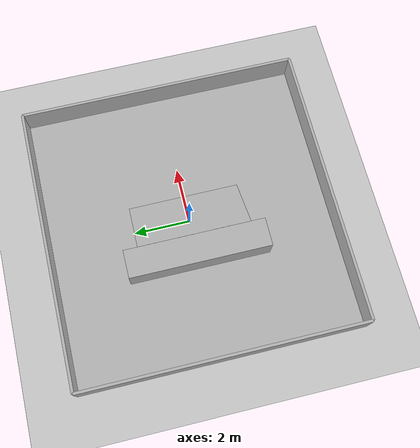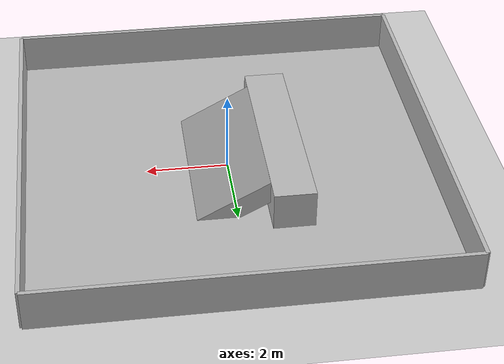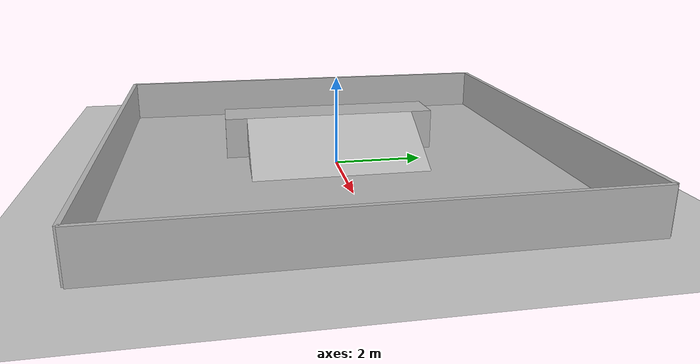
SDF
<?xml version="1.0"?>
<sdf version="1.5">
  <world name="test_world">
    <include>
      <uri>model://sun</uri>
    </include>
    <include>
      <uri>model://ground_plane</uri>
    </include>

    <!-- Floor -->
    <model name="floor">
      <static>true</static>
      <link name="link">
        <collision name="collision">
          <geometry>
            <box>
              <size>10 10 0.01</size> <!-- Large floor -->
            </box>
          </geometry>
        </collision>
        <visual name="visual">
          <geometry>
            <box>
              <size>10 10 0.01</size>
            </box>
            <material>
              <ambient>0.7 0.7 0.7 1</ambient>
            </material>
          </geometry>
        </visual>
      </link>
    </model>

    <!-- Walls -->
    <model name="wall_1">
      <static>true</static>
      <link name="link">
        <collision name="collision">
          <geometry>
            <box>
              <size>10 0.1 10</size> <!-- Length 10, thin width, 1m high -->
            </box>
          </geometry>
        </collision>
        <visual name="visual">
          <geometry>
            <box>
              <size>10 0.1 1</size>
            </box>
            <material>
              <ambient>0.5 0.5 0.5 1</ambient>
            </material>
          </geometry>
        </visual>
        <pose>0 5 0.5 0 0 0</pose> <!-- Position of the wall -->
      </link>
    </model>

    <model name="wall_2">
      <static>true</static>
      <link name="link">
        <collision name="collision">
          <geometry>
            <box>
              <size>10 0.1 10</size>
            </box>
          </geometry>
        </collision>
        <visual name="visual">
          <geometry>
            <box>
              <size>10 0.1 1</size>
            </box>
            <material>
              <ambient>0.5 0.5 0.5 1</ambient>
            </material>
          </geometry>
        </visual>
        <pose>0 -5 0.5 0 0 0</pose>
      </link>
    </model>

    <model name="wall_3">
      <static>true</static>
      <link name="link">
        <collision name="collision">
          <geometry>
            <box>
              <size>0.1 10 10</size>
            </box>
          </geometry>
        </collision>
        <visual name="visual">
          <geometry>
            <box>
              <size>0.1 10 1</size>
            </box>
            <material>
              <ambient>0.5 0.5 0.5 1</ambient>
            </material>
          </geometry>
        </visual>
        <pose>5 0 0.5 0 0 0</pose> <!-- Another wall -->
      </link>
    </model>

    <model name="wall_4">
      <static>true</static>
      <link name="link">
        <collision name="collision">
          <geometry>
            <box>
              <size>0.1 10 10</size>
            </box>
          </geometry>
        </collision>
        <visual name="visual">
          <geometry>
            <box>
              <size>0.1 10 1</size>
            </box>
            <material>
              <ambient>0.5 0.5 0.5 1</ambient>
            </material>
          </geometry>
        </visual>
        <pose>-5 0 0.5 0 0 0</pose>
      </link>
    </model>

    <!-- Ramp -->
    <model name="ramp">
      <static>true</static>
      <link name="link">
        <collision name="collision">
          <geometry>
            <box>
              <size>2 4 0.5</size> <!-- Ramp size -->
            </box>
          </geometry>
        </collision>
        <visual name="visual">
          <geometry>
            <box>
              <size>2 4 0.5</size>
            </box>
            <material>
              <ambient>0.7 0.3 0.3 1</ambient>
            </material>
          </geometry>
        </visual>
        <pose>0 0 0.25 0 0.5 0</pose> <!-- Tilted for ramp -->
      </link>
    </model>

    <!-- flat -->
    <model name="flat">
      <static>true</static>
      <link name="link">
        <collision name="collision">
          <geometry>
            <box>
              <size>1 4 1</size> <!-- flat size -->
            </box>
          </geometry>
        </collision>
        <visual name="visual">
          <geometry>
            <box>
              <size>1 5 1</size>
            </box>
            <material>
              <ambient>0.7 0.3 0.3 1</ambient>
            </material>
          </geometry>
        </visual>
        <pose>-1.256 0 0.448 0 0 0</pose> <!--  tilt -->
      </link>
    </model>
  </world>
</sdf>
